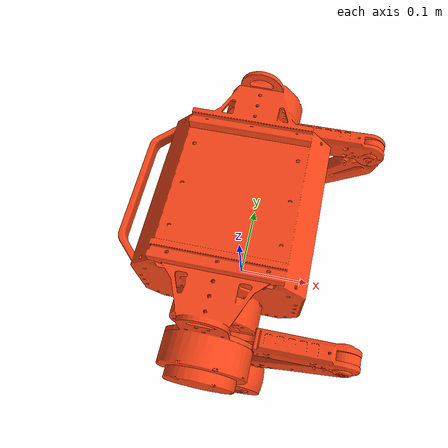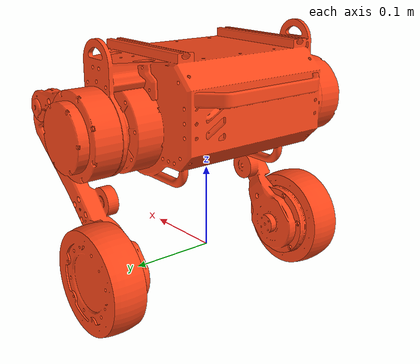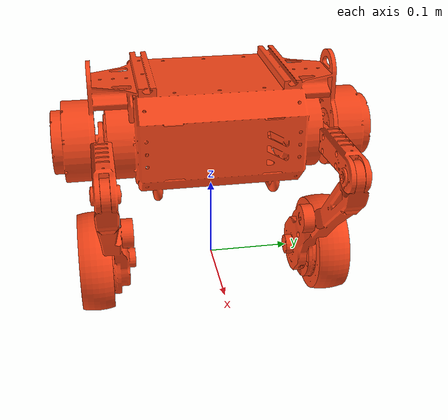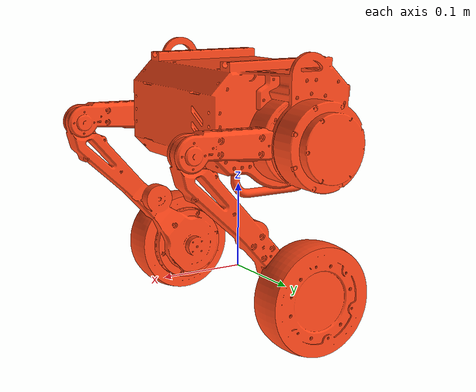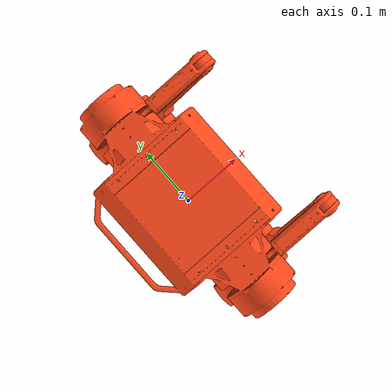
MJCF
<mujoco model="wheel_legged">
  <default>
    <default class="robot">
      <default class="motor">
        <joint />
        <motor />
      </default>
      <default class="visual">
        <geom material="visualgeom" contype="0" conaffinity="0" group="2" />
      </default>
      <default class="collision">
        <geom material="collision_material" condim="3" contype="0" conaffinity="1" priority="1" group="1" solref="0.005 1" friction="1 0.01 0.01" />
        <equality solimp="0.99 0.999 1e-05" solref="0.005 1" />
      </default>
    </default>
  </default>

  <compiler angle="radian" />

  <asset>
    <material name="" rgba="0.29804 0.29804 0.29804 1" />
    <material name="default_material" rgba="0.7 0.7 0.7 1" />
    <material name="collision_material" rgba="1.0 0.28 0.1 0.9" />
    <mesh name="base_link.STL" file="../meshes/base_link.STL" />
    <mesh name="LF_Link.STL" file="../meshes/LF_Link.STL" />
    <mesh name="LFP_Link.STL" file="../meshes/LFP_Link.STL" />
    <mesh name="LW_Link.STL" file="../meshes/LW_Link.STL" />
    <mesh name="RF_Link.STL" file="../meshes/RF_Link.STL" />
    <mesh name="RFP_Link.STL" file="../meshes/RFP_Link.STL" />
    <mesh name="RW_Link.STL" file="../meshes/RW_Link.STL" />
  </asset>

  <worldbody>
    <body name="world" pos="0.00000000 0.00000000 0.16803410" quat="1 0 0 0" childclass="robot">
      <freejoint name="floating_base" />
      <body name="base_link" pos="0 0 0" quat="1 0 0 0">
        <inertial pos="-0.00064749 -8.914E-05 0.0086246" quat="1.0 0.0 0.0 0.0" mass="4.5068" diaginertia="0.0050266 0.0054947 0.0061634" />
        <geom name="base_link_collision" pos="0 0 0" quat="1.0 0.0 0.0 0.0" type="mesh" mesh="base_link.STL" class="collision" />
        <geom name="base_link_visual" pos="0 0 0" quat="1.0 0.0 0.0 0.0" material="" type="mesh" mesh="base_link.STL" class="visual" />
        <body name="LF_Link" pos="0 0.132500000000022 0" quat="1.0 0.0 0.0 0.0">
          <joint name="LF_Joint" type="hinge" ref="0.0" class="motor" range="-1.57 3.14" axis="0 -1 0" />
          <inertial pos="0.089365 -0.00018073 0.0029646" quat="1.0 0.0 0.0 0.0" mass="0.17934" diaginertia="1.9784e-05 7.9217e-05 7.1768e-05" />
          <geom name="LF_Link_collision" pos="0 0 0" quat="1.0 0.0 0.0 0.0" type="mesh" mesh="LF_Link.STL" class="collision" />
          <geom name="LF_Link_visual" pos="0 0 0" quat="1.0 0.0 0.0 0.0" material="" type="mesh" mesh="LF_Link.STL" class="visual" />
          <body name="LFP_Link" pos="0.142000004507913 0 0" quat="1.0 0.0 0.0 0.0">
            <joint name="LFP_Joint" type="hinge" ref="0.0" class="motor" range="-1.134 0.314" axis="0 1 0" />
            <inertial pos="-0.12177 0.0042175 -0.14582" quat="1.0 0.0 0.0 0.0" mass="0.95838" diaginertia="0.00069686 0.0012011 0.00065048" />
            <geom name="LFP_Link_collision" pos="0 0 0" quat="1.0 0.0 0.0 0.0" type="mesh" mesh="LFP_Link.STL" class="collision" />
            <geom name="LFP_Link_visual" pos="0 0 0" quat="1.0 0.0 0.0 0.0" material="" type="mesh" mesh="LFP_Link.STL" class="visual" />
            <body name="LW_Link" pos="-0.142000004507854 0 -0.168034099728752" quat="1.0 0.0 0.0 0.0">
              <joint name="LW_Joint" type="hinge" ref="0.0" class="motor" range="-999999 999999" axis="0 -1 0" />
              <inertial pos="-2.5931E-15 0.017841 1.3878E-16" quat="1.0 0.0 0.0 0.0" mass="0.3803" diaginertia="0.00056199 0.0010274 0.00056199" />
              <geom name="LW_Link_collision" pos="0 0 0" quat="1.0 0.0 0.0 0.0" type="mesh" mesh="LW_Link.STL" class="collision" />
              <geom name="LW_Link_visual" pos="0 0 0" quat="1.0 0.0 0.0 0.0" material="" type="mesh" mesh="LW_Link.STL" class="visual" />
            </body>
          </body>
        </body>
        <body name="RF_Link" pos="0 -0.132499999999983 0" quat="1.0 0.0 0.0 0.0">
          <joint name="RF_Joint" type="hinge" ref="0.0" class="motor" range="-1.57 3.14" axis="0 -1 0" />
          <inertial pos="0.089365 -7.144E-05 0.0029646" quat="1.0 0.0 0.0 0.0" mass="0.17934" diaginertia="1.9784e-05 7.9217e-05 7.1768e-05" />
          <geom name="RF_Link_collision" pos="0 0 0" quat="1.0 0.0 0.0 0.0" type="mesh" mesh="RF_Link.STL" class="collision" />
          <geom name="RF_Link_visual" pos="0 0 0" quat="1.0 0.0 0.0 0.0" material="" type="mesh" mesh="RF_Link.STL" class="visual" />
          <body name="RFP_Link" pos="0.142000004507912 0 0" quat="1.0 0.0 0.0 0.0">
            <joint name="RFP_Joint" type="hinge" ref="0.0" class="motor" range="-1.134 0.314" axis="0 1 0" />
            <inertial pos="-0.12541 -0.0043984 -0.1498" quat="1.0 0.0 0.0 0.0" mass="0.95838" diaginertia="0.00064564 0.0011108 0.00061075" />
            <geom name="RFP_Link_collision" pos="0 0 0" quat="1.0 0.0 0.0 0.0" type="mesh" mesh="RFP_Link.STL" class="collision" />
            <geom name="RFP_Link_visual" pos="0 0 0" quat="1.0 0.0 0.0 0.0" material="" type="mesh" mesh="RFP_Link.STL" class="visual" />
            <body name="RW_Link" pos="-0.142 0 -0.16803" quat="1.0 0.0 0.0 0.0">
              <joint name="RW_Joint" type="hinge" ref="0.0" class="motor" range="-99999 99999" axis="0 -1 0" />
              <inertial pos="5.6319E-15 -0.017841 4.0079E-14" quat="1.0 0.0 0.0 0.0" mass="0.3803" diaginertia="0.00056199 0.0010274 0.00056199" />
              <geom name="RW_Link_collision" pos="0 0 0" quat="1.0 0.0 0.0 0.0" type="mesh" mesh="RW_Link.STL" class="collision" />
              <geom name="RW_Link_visual" pos="0 0 0" quat="1.0 0.0 0.0 0.0" material="" type="mesh" mesh="RW_Link.STL" class="visual" />
            </body>
          </body>
        </body>
      </body>
      <site name="world_site" pos="0 0 0" quat="1 0 0 0" />
      <camera name="front_camera" mode="track" fovy="90.0" quat="4.329780281177467e-17 4.329780281177466e-17 0.7071067811865475 0.7071067811865476" pos="0.0 2.0 0.5" />
      <camera name="side_camera" mode="track" fovy="90.0" quat="-0.5 -0.4999999999999999 0.5 0.5000000000000001" pos="-2.0 0.0 0.5" />
    </body>
  </worldbody>

  <actuator>
    <motor name="LF_Joint_ctrl" joint="LF_Joint" class="motor" />
    <motor name="LFP_Joint_ctrl" joint="LFP_Joint" class="motor" />
    <motor name="LW_Joint_ctrl" joint="LW_Joint" class="motor" />
    <motor name="RF_Joint_ctrl" joint="RF_Joint" class="motor" />
    <motor name="RFP_Joint_ctrl" joint="RFP_Joint" class="motor" />
    <motor name="RW_Joint_ctrl" joint="RW_Joint" class="motor" />
  </actuator>

  <contact>
    <exclude body1="base_link" body2="LF_Link" />
    <exclude body1="LF_Link" body2="LFP_Link" />
    <exclude body1="LFP_Link" body2="LW_Link" />
    <exclude body1="base_link" body2="RF_Link" />
    <exclude body1="RF_Link" body2="RFP_Link" />
    <exclude body1="RFP_Link" body2="RW_Link" />
  </contact>

  <sensor>
    <framepos name="world_site_pos" objtype="site" objname="world_site" />
    <framequat name="world_site_quat" objtype="site" objname="world_site" />
    <framelinvel name="world_site_linvel" objtype="site" objname="world_site" />
    <frameangvel name="world_site_angvel" objtype="site" objname="world_site" />
    <velocimeter name="world_site_vel" site="world_site" />
  </sensor>
</mujoco>
